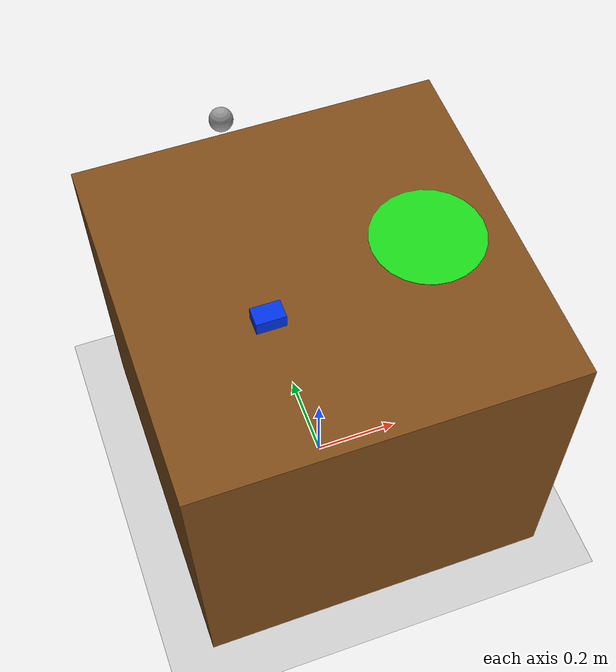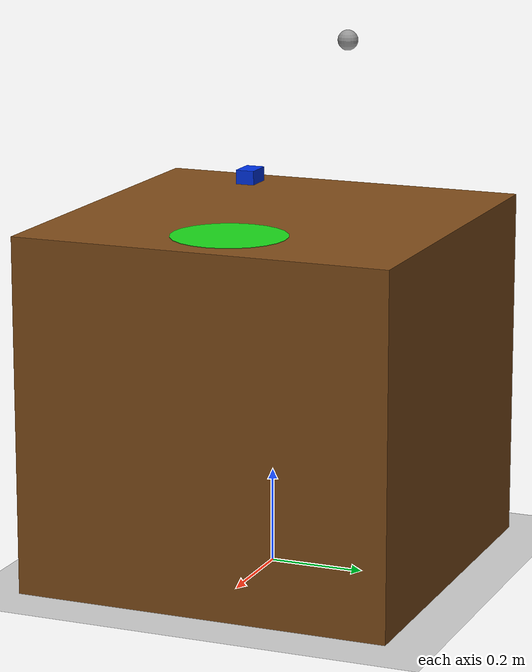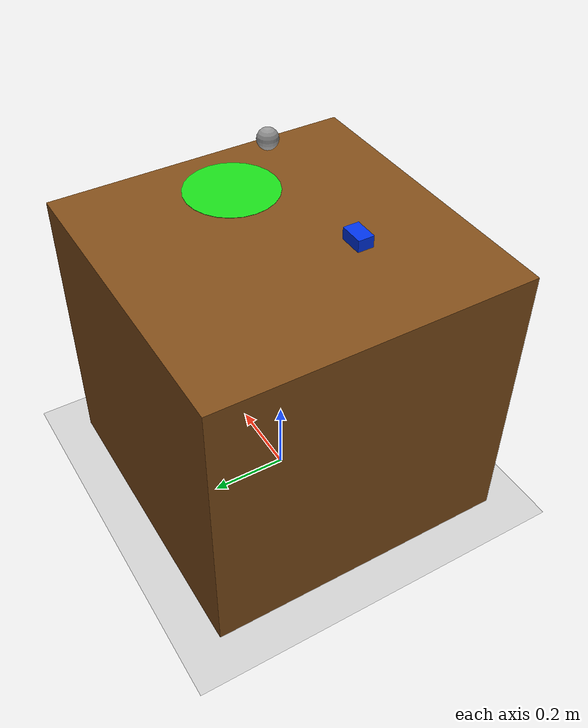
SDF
<sdf version="1.6">
 <world name="tabletop">
  <include><uri>model://ground_plane</uri></include>
  <include><uri>model://sun</uri></include>
  <physics name="grasp_ode" type="ode">
   <max_step_size>0.001</max_step_size>
   <real_time_update_rate>1000</real_time_update_rate>
   <ode>
    <solver><type>quick</type><iters>150</iters><sor>1.3</sor></solver>
    <constraints>
     <cfm>0.0</cfm>
     <erp>0.2</erp>
     <contact_max_correcting_vel>1.0</contact_max_correcting_vel>
     <contact_surface_layer>0.001</contact_surface_layer>
    </constraints>
   </ode>
  </physics>
  <plugin name="gazebo_ros_state" filename="libgazebo_ros_state.so">
   <ros><namespace>/</namespace></ros>
   <update_rate>30.0</update_rate>
  </plugin>
  <plugin name="link_attacher" filename="libxarm1s_link_attacher.so">
   <ros><namespace>/</namespace></ros>
   <gripper_model>xarm1s</gripper_model>
   <gripper_link>xarm_2_link</gripper_link>
   <left_finger_link>gripper_left_finger_link</left_finger_link>
   <right_finger_link>gripper_right_finger_link</right_finger_link>
   <grip_time>0.05</grip_time>
   <fallback_timeout>1.0</fallback_timeout>
  </plugin>
  <model name="table">
   <static>true</static>
   <link name="link">
    <pose>0 0 0.375 0 0 0</pose>
    <visual name="visual">
     <geometry><box><size>0.8 0.8 0.75</size></box></geometry>
     <material><ambient>0.5 0.3 0.1 1</ambient></material>
    </visual>
    <collision name="collision"><geometry><box><size>0.8 0.8 0.75</size></box></geometry></collision>
   </link>
  </model>
  <model name="drop_plate">
   <static>true</static>
   <link name="link">
    <pose>0.23 0.0 0.750 0 0 0</pose>
    <visual name="visual">
     <geometry><cylinder><radius>0.12</radius><length>0.002</length></cylinder></geometry>
     <material>
      <ambient>0.0 0.35 0.0 1</ambient>
      <diffuse>0.1 0.85 0.1 1</diffuse>
      <specular>0.05 0.1 0.05 1</specular>
     </material>
    </visual>
   </link>
  </model>
  <include><name>golf_ball</name><pose>-0.14 0.11 0.80 0 0 0</pose><uri>model://golf_ball</uri></include>
  <model name="blue_box">
   <pose>-0.14 -0.11 0.80 0 0 0</pose>
   <link name="link">
    <visual name="visual">
     <geometry><box><size>0.060 0.040 0.030</size></box></geometry>
     <material>
      <ambient>0.0 0.1 0.5 1</ambient>
      <diffuse>0.0 0.2 0.9 1</diffuse>
      <specular>0.05 0.05 0.05 1</specular>
     </material>
    </visual>
    <collision name="collision">
     <geometry><box><size>0.060 0.040 0.030</size></box></geometry>
     <surface>
      <friction><ode><mu>1.5</mu><mu2>1.5</mu2></ode></friction>
      <contact><ode><kp>1e5</kp><kd>10</kd><min_depth>0.001</min_depth><max_vel>0.1</max_vel></ode></contact>
     </surface>
    </collision>
    <inertial>
     <mass>0.05</mass>
     <inertia><ixx>1e-5</ixx><iyy>1e-5</iyy><izz>1e-5</izz><ixy>0</ixy><ixz>0</ixz><iyz>0</iyz></inertia>
    </inertial>
   </link>
  </model>
 </world>
</sdf>

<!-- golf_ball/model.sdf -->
<sdf version='1.7'>
  <model name='golf_ball'>
    <link name='link_0'>
      <inertial>
        <mass>0.0460639</mass>
        <inertia>
          <ixx>8.4e-06</ixx>
          <ixy>0</ixy>
          <ixz>0</ixz>
          <iyy>8.4e-06</iyy>
          <iyz>0</iyz>
          <izz>8.4e-06</izz>
        </inertia>
        <pose>0 0 0 0 -0 0</pose>
      </inertial>
      <pose>0 0 0.3 0 -0 0</pose>
      <gravity>1</gravity>
      <self_collide>0</self_collide>
      <kinematic>0</kinematic>
      <enable_wind>0</enable_wind>
      <visual name='visual'>
        <pose>0 0 0 0 -0 0</pose>
        <geometry>
          <sphere>
            <radius>0.02135</radius>
          </sphere>
        </geometry>
        <material>
          <lighting>1</lighting>
          <script>
            <uri>file://media/materials/scripts/gazebo.material</uri>
            <name>Gazebo/Grey</name>
          </script>
          <shader type='pixel'>
            <normal_map>__default__</normal_map>
          </shader>
          <ambient>1 1 1 1</ambient>
          <diffuse>1 1 1 1</diffuse>
          <specular>1 1 1 1</specular>
          <emissive>0 0 0 1</emissive>
        </material>
        <transparency>0</transparency>
        <cast_shadows>1</cast_shadows>
      </visual>
      <collision name='collision'>
        <laser_retro>0</laser_retro>
        <max_contacts>10</max_contacts>
        <pose>0 0 0 0 -0 0</pose>
        <geometry>
          <sphere>
            <radius>0.02135</radius>
          </sphere>
        </geometry>
        <surface>
          <friction>
            <ode>
              <mu>1</mu>
              <mu2>1</mu2>
              <fdir1>0 0 0</fdir1>
              <slip1>0</slip1>
              <slip2>0</slip2>
            </ode>
            <torsional>
              <coefficient>1</coefficient>
              <patch_radius>0</patch_radius>
              <surface_radius>0</surface_radius>
              <use_patch_radius>1</use_patch_radius>
              <ode>
                <slip>0</slip>
              </ode>
            </torsional>
          </friction>
          <bounce>
            <restitution_coefficient>0</restitution_coefficient>
            <threshold>1e+06</threshold>
          </bounce>
          <contact>
            <collide_without_contact>0</collide_without_contact>
            <collide_without_contact_bitmask>1</collide_without_contact_bitmask>
            <collide_bitmask>1</collide_bitmask>
            <ode>
              <soft_cfm>0</soft_cfm>
              <soft_erp>0.2</soft_erp>
              <kp>1e+13</kp>
              <kd>1</kd>
              <max_vel>0.01</max_vel>
              <min_depth>0</min_depth>
            </ode>
            <bullet>
              <split_impulse>1</split_impulse>
              <split_impulse_penetration_threshold>-0.01</split_impulse_penetration_threshold>
              <soft_cfm>0</soft_cfm>
              <soft_erp>0.2</soft_erp>
              <kp>1e+13</kp>
              <kd>1</kd>
            </bullet>
          </contact>
        </surface>
      </collision>
    </link>
    <static>0</static>
    <allow_auto_disable>1</allow_auto_disable>

    <plugin name="buoyancy" filename="libBuoyancyPlugin.so">
      <fluid_density>1000</fluid_density>
    </plugin>
  </model>
</sdf>
